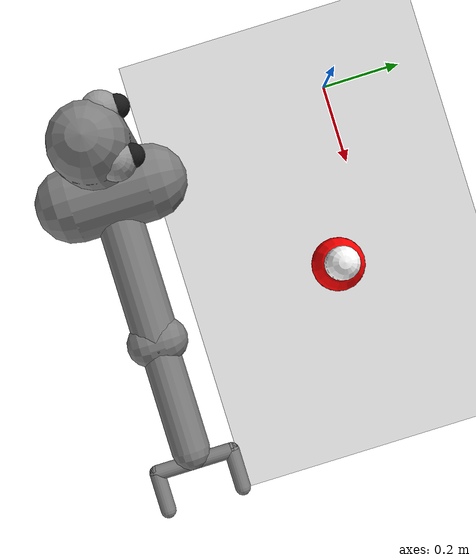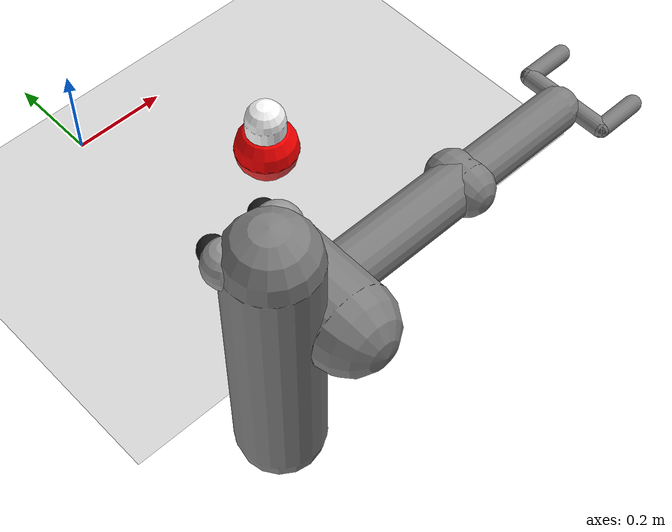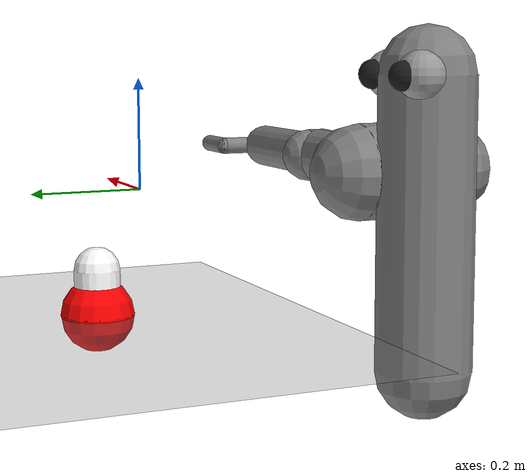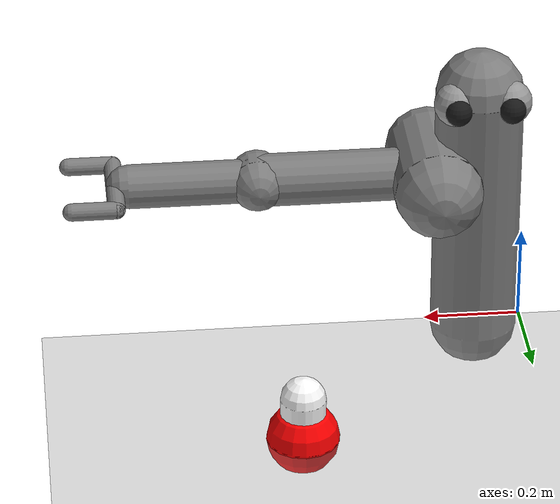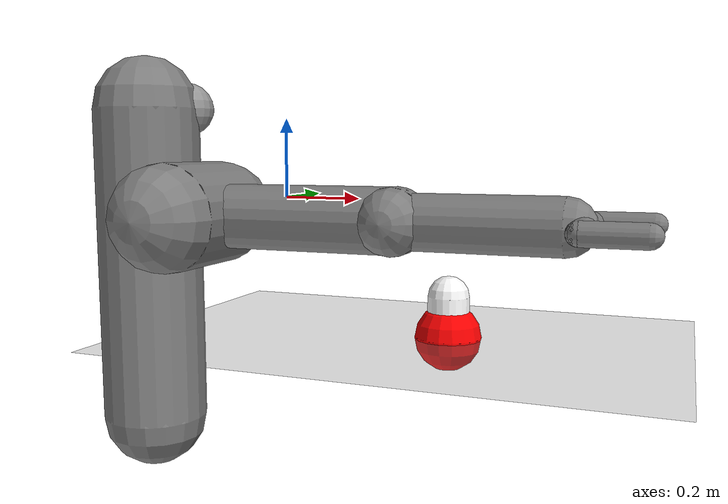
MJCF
<mujoco model="arm3d">
  <compiler inertiafromgeom="true" angle="radian" coordinate="local"/>
  <option timestep="0.01" gravity="0 0 0" iterations="20" integrator="Euler" />

  <default>
    <joint armature='0.04' damping="1" limited="true"/>
    <geom friction=".8 .1 .1" density="300" margin="0.002" condim="1" contype="0" conaffinity="0"/>
  </default>

  <custom>
    <!-- brax custom params -->
    <numeric data="1" name="constraint_stiffness"/>
    <tuple name="constraint_stiffness">
       <element objtype="body" objname="r_shoulder_pan_link" prm="10000"/>
       <element objtype="body" objname="r_shoulder_lift_link" prm="5000"/>
       <element objtype="body" objname="r_upper_arm_roll_link" prm="3000"/>
       <element objtype="body" objname="r_elbow_flex_link" prm="3000"/>
       <element objtype="body" objname="r_forearm_roll_link" prm="3000"/>
       <element objtype="body" objname="r_wrist_flex_link" prm="500"/>
       <element objtype="body" objname="r_wrist_roll_link" prm="1000"/>
       <element objtype="body" objname="object" prm="100"/>
    </tuple>
		<numeric data="10000 5000 2000 500 500 100 100 1 1" name="constraint_limit_stiffness"/>
    <numeric data="2 2 2 1 0.2 0.2 0.2 0 0" name="constraint_ang_damping"/>
    <numeric data="80 50 50 50 50 1 5 0.1 0.1" name="constraint_vel_damping"/>
    <numeric data="0" name="ang_damping"/>
    <numeric data="0" name="spring_mass_scale"/>
		<numeric data="1" name="spring_inertia_scale"/>
		<numeric data="10" name="solver_maxls"/>
  </custom>

  <worldbody>
    <light diffuse=".5 .5 .5" pos="0 0 3" dir="0 0 -1"/>
    <geom name="table" type="plane" pos="0 0.5 -0.325" size="1 1 0.1" contype="1" conaffinity="0"/>

    <body name="r_shoulder_pan_link" pos="0 -0.6 0">
      <geom name="e1" type="sphere" rgba="0.6 0.6 0.6 1" pos="-0.06 0.05 0.2" size="0.05" />
      <geom name="e2" type="sphere" rgba="0.6 0.6 0.6 1" pos=" 0.06 0.05 0.2" size="0.05" />
      <geom name="e1p" type="sphere" rgba="0.1 0.1 0.1 1" pos="-0.06 0.09 0.2" size="0.03" />
      <geom name="e2p" type="sphere" rgba="0.1 0.1 0.1 1" pos=" 0.06 0.09 0.2" size="0.03" />
      <geom name="sp" type="capsule" fromto="0 0 -0.4 0 0 0.2" size="0.1" />
      <joint name="r_shoulder_pan_joint" type="hinge" pos="0 0 0" axis="0 0 1" range="-2.2854 1.714602" damping="1.0" />

      <body name="r_shoulder_lift_link" pos="0.1 0 0">
        <geom name="sl" type="capsule" fromto="0 -0.1 0 0 0.1 0" size="0.1" />
        <joint name="r_shoulder_lift_joint" type="hinge" pos="0 0 0" axis="0 1 0" range="-0.5236 1.3963" damping="1.0" />

        <body name="r_upper_arm_roll_link" pos="0 0 0">
          <geom name="uar" type="capsule" fromto="-0.1 0 0 0.1 0 0" size="0.02" />
          <joint name="r_upper_arm_roll_joint" type="hinge" pos="0 0 0" axis="1 0 0" range="-1.5 1.7" damping="0.1" />

          <body name="r_upper_arm_link" pos="0 0 0">
            <geom name="ua" type="capsule" fromto="0 0 0 0.4 0 0" size="0.06" />

            <body name="r_elbow_flex_link" pos="0.4 0 0">
              <geom name="ef" type="capsule" fromto="0 -0.02 0 0.0 0.02 0" size="0.06" />
              <joint name="r_elbow_flex_joint" type="hinge" pos="0 0 0" axis="0 1 0" range="-2.3213 0" damping="0.1" />

              <body name="r_forearm_roll_link" pos="0 0 0">
                <geom name="fr" type="capsule" fromto="-0.1 0 0 0.1 0 0" size="0.02" />
                <joint name="r_forearm_roll_joint" type="hinge" limited="true" pos="0 0 0" axis="1 0 0" damping=".1" range="-1.5 1.5"/>

                <body name="r_forearm_link" pos="0 0 0">
                  <geom name="fa" type="capsule" fromto="0 0 0 0.291 0 0" size="0.05" />

                  <body name="r_wrist_flex_link" pos="0.321 0 0">
                    <geom name="wf" type="capsule" fromto="0 -0.02 0 0 0.02 0" size="0.01" />
                    <joint name="r_wrist_flex_joint" type="hinge" pos="0 0 0" axis="0 1 0" range="-1.094 0" damping=".1" />

                    <body name="r_wrist_roll_link" pos="0 0 0">
                      <joint name="r_wrist_roll_joint" type="hinge" pos="0 0 0" limited="true" axis="1 0 0" damping="0.1" range="-1.5 1.5"/>
                      <body name="tips_arm" pos="0 0 0">
                        <geom name="tip_arml" type="sphere" pos="0.1 -0.1 0." size="0.01" />
                        <geom name="tip_armr" type="sphere" pos="0.1 0.1 0." size="0.01" />
                      </body>
                      <geom name="r_wrist_roll1" type="capsule" fromto="0 -0.1 0. 0.0 +0.1 0" size="0.02" contype="0" conaffinity="1" />
                      <geom name="r_wrist_roll2" type="capsule" fromto="0 -0.1 0. 0.1 -0.1 0" size="0.02" contype="0" conaffinity="1" />
                      <geom name="r_wrist_roll3" type="capsule" fromto="0 +0.1 0. 0.1 +0.1 0." size="0.02" contype="0" conaffinity="1" />
                    </body>
                  </body>
                </body>
              </body>
            </body>
          </body>
        </body>
      </body>
    </body>

    <body name="object" pos="0.45 -0.05 -0.275" >
      <!-- Density changed to 1 from 0.00001 for brax. -->
      <geom rgba="1 1 1 0" type="sphere" size="0.05 0.05 0.05" density="1" conaffinity="0"/>
      <geom name="object_geom" rgba="1 1 1 1" type="capsule" size="0.05 0.05 0.05" density="1" contype="1" conaffinity="0"/>
      <joint name="obj_slidey" type="slide" pos="0 0 0" axis="0 1 0" range="-10.3213 10.3" damping="0.5"/>
      <joint name="obj_slidex" type="slide" pos="0 0 0" axis="1 0 0" range="-10.3213 10.3" damping="0.5"/>
    </body>

    <body name="goal" pos="0.45 -0.05 -0.3230">
      <geom rgba="1 0 0 1" type="capsule" size="0.08 0.001 0.1" density='0.00001' contype="0" conaffinity="0"/>
      <joint name="goal_slidey" type="slide" pos="0 0 0" axis="0 1 0" range="-10.3213 10.3" damping="0.5"/>
      <joint name="goal_slidex" type="slide" pos="0 0 0" axis="1 0 0" range="-10.3213 10.3" damping="0.5"/>
    </body>
  </worldbody>

  <actuator>
    <motor joint="r_shoulder_pan_joint" ctrlrange="-2.0 2.0" ctrllimited="true" />
    <motor joint="r_shoulder_lift_joint" ctrlrange="-2.0 2.0" ctrllimited="true" />
    <motor joint="r_upper_arm_roll_joint" ctrlrange="-2.0 2.0" ctrllimited="true" />
    <motor joint="r_elbow_flex_joint" ctrlrange="-2.0 2.0" ctrllimited="true" />
    <motor joint="r_forearm_roll_joint" ctrlrange="-2.0 2.0" ctrllimited="true" />
    <motor joint="r_wrist_flex_joint" ctrlrange="-2.0 2.0" ctrllimited="true" />
    <motor joint="r_wrist_roll_joint" ctrlrange="-2.0 2.0" ctrllimited="true"/>
  </actuator>

</mujoco>
